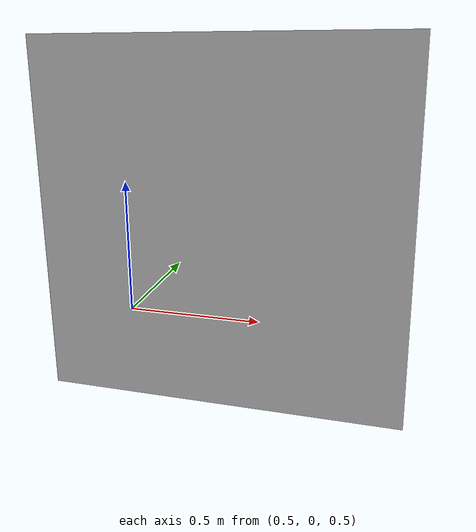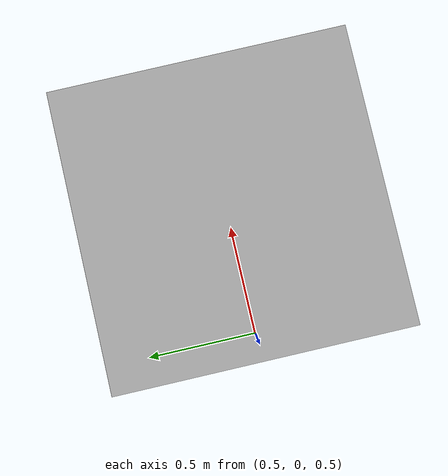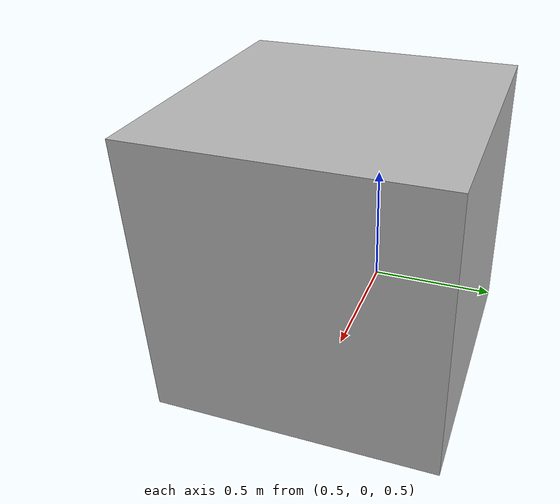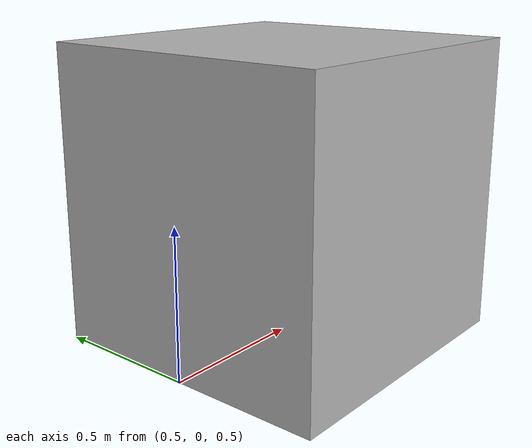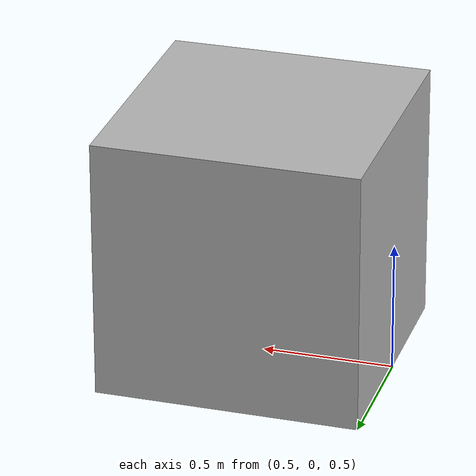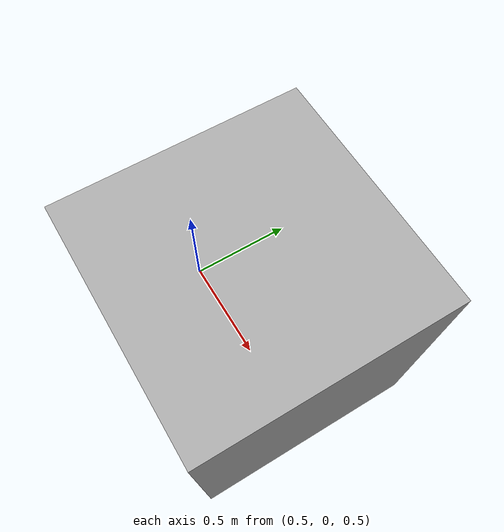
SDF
<?xml version="1.0" encoding="UTF-8"?>
<sdf version='1.6'>
  <model name='box'>
    <link name='link1'>
      <pose frame=''>0 0 0 0 -0 0</pose>
      <inertial>
        <pose frame=''>0 0 0 0 -0 0</pose>
        <mass>1</mass>
        <inertia>
          <ixx>100</ixx>
          <ixy>0</ixy>
          <ixz>0</ixz>
          <iyy>100</iyy>
          <iyz>0</iyz>
          <izz>100</izz>
        </inertia>
      </inertial>
      <collision name='link1_collision'>
        <pose frame=''>0 0 0 0 -0 0</pose>
        <geometry>
          <box>
            <size>1 1 1</size>
          </box>
        </geometry>
      </collision>
      <visual name='link1_visual'>
        <pose frame=''>1 0 1 0 -0 0</pose>
        <geometry>
          <box>
            <size>1 1 1</size>
          </box>
        </geometry>
      </visual>
    </link>
  </model>
</sdf>
